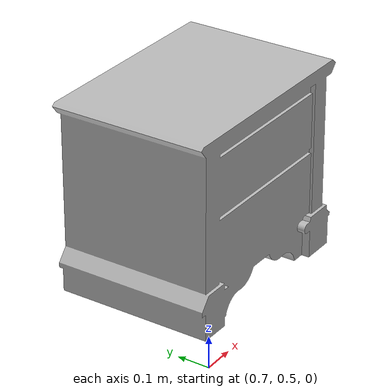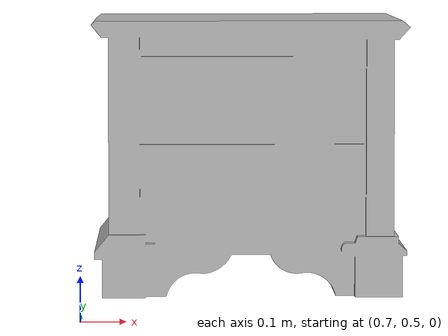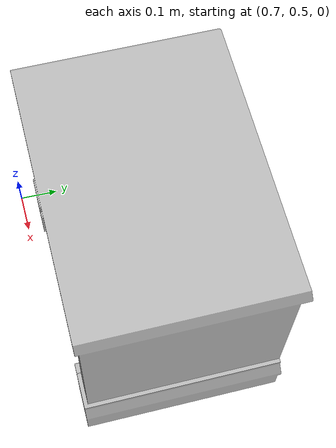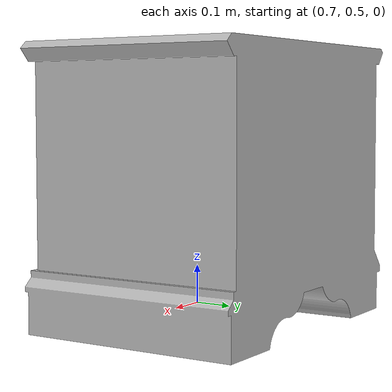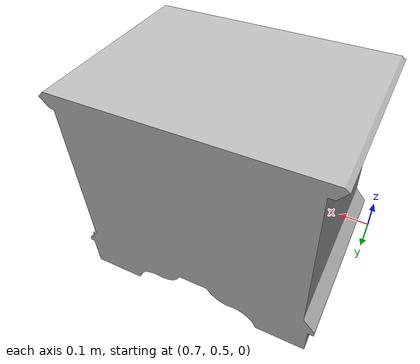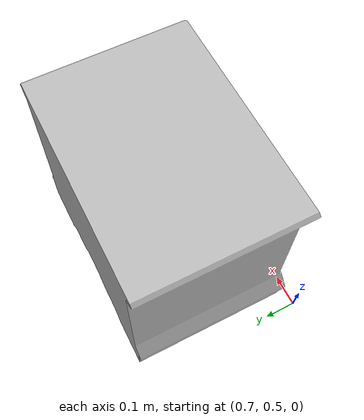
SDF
<sdf version="1.4">
  <model name="nightstand">
    <static>1</static>
    <link name="link">
      <collision name="colision">
        <pose>0 0 0 0 0 0</pose>
        <geometry>
          <mesh>
            <uri>model://nightstand/meshes/nightstand.min.dae</uri>
            <scale> 0.02 0.02 0.02 </scale>
          </mesh>
        </geometry>
        <surface>
          <bounce />
          <friction>
            <ode />
          </friction>
          <contact>
            <ode />
          </contact>
        </surface>
      </collision>

      <visual name="visual">
        <pose>0 0 0 0 0 0</pose>
        <geometry>
          <mesh>
            <uri>model://nightstand/meshes/nightstand.dae</uri>
            <scale> 0.02 0.02 0.02 </scale>
          </mesh>
        </geometry>
      </visual>

      <velocity_decay>
        <linear>0.000000</linear>
        <angular>0.000000</angular>
      </velocity_decay>
      <self_collide>0</self_collide>
      <kinematic>0</kinematic>
      <gravity>1</gravity>
    </link>
  </model>
</sdf>
